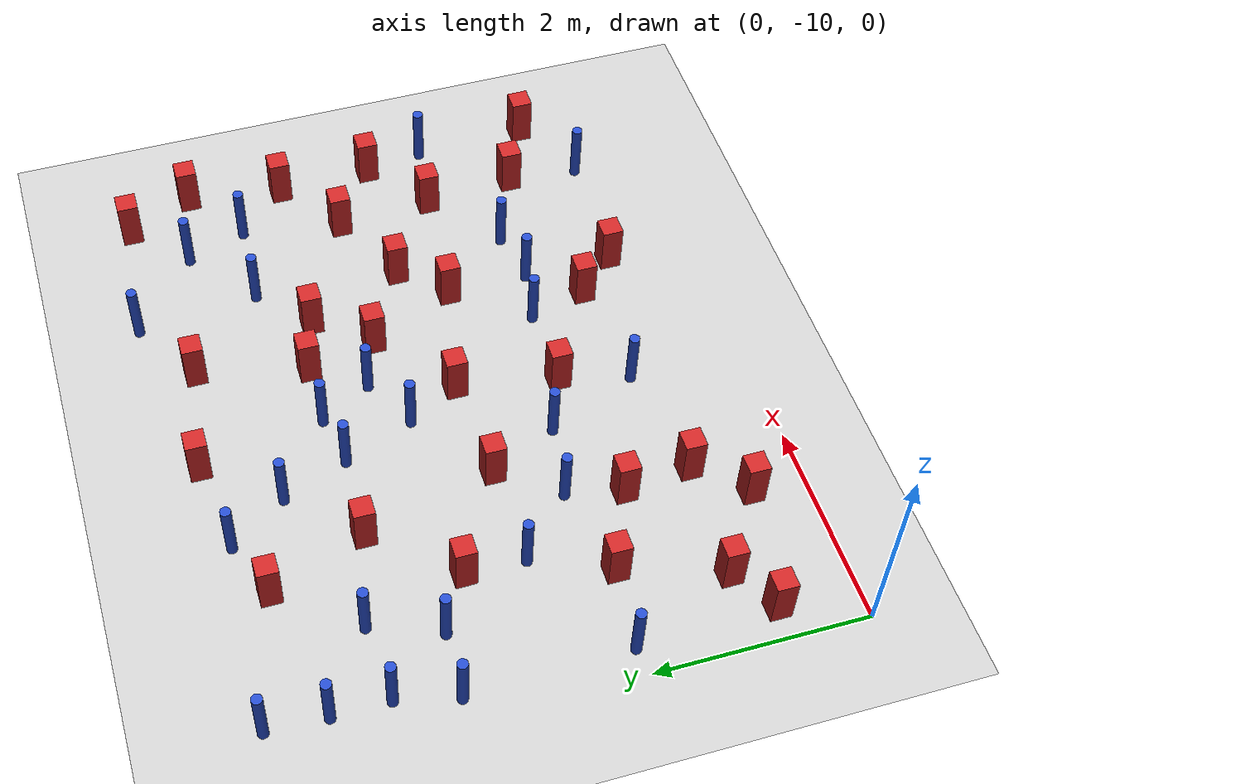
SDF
<sdf version="1.6">
 <world name="default">
  <model name="ground_plane">
   <static>1</static>
   <link name="link">
    <collision name="collision">
     <geometry><plane><normal>0 0 1</normal><size>100 100</size></plane></geometry>
     <surface><friction><ode><mu>100</mu><mu2>50</mu2></ode></friction></surface>
    </collision>
    <visual name="visual">
     <cast_shadows>0</cast_shadows>
     <geometry><plane><normal>0 0 1</normal><size>100 100</size></plane></geometry>
     <material>
      <ambient>1.0 1.0 1.0 1.0</ambient>
      <diffuse>0.8 0.8 0.8 1.0</diffuse>
      <specular>0.01 0.01 0.01 1.000000</specular>
     </material>
    </visual>
   </link>
  </model>
  <model name="pole_obstacle12">
   <static>true</static>
   <pose>3.98657509384 -8.20033591133 -2.66029137497e-07 -5.69430205676e-07 6.841299665e-07 -8.68349371119e-08</pose>
   <link name="link">
    <pose>0 0 0.3 0 -0 0</pose>
    <inertial>
     <mass>1</mass>
     <inertia><ixx>0.145833</ixx><ixy>0</ixy><ixz>0</ixz><iyy>0.145833</iyy><iyz>0</iyz><izz>0.125</izz></inertia>
    </inertial>
    <collision name="collision">
     <geometry><cylinder><radius>0.05</radius><length>.6</length></cylinder></geometry>
    </collision>
    <visual name="visual">
     <geometry><cylinder><radius>0.05</radius><length>.6</length></cylinder></geometry>
     <material>
      <script><name>Gazebo/Blue</name><uri>file://media/materials/scripts/gazebo.material</uri></script>
     </material>
    </visual>
   </link>
  </model>
  <model name="pole_obstacle14">
   <static>true</static>
   <pose>0.847910647393 -6.44056123123 -2.66029137441e-07 -5.69430205631e-07 6.84129966561e-07 -8.68349370784e-08</pose>
   <link name="link">
    <pose>0 0 0.3 0 -0 0</pose>
    <inertial>
     <mass>1</mass>
     <inertia><ixx>0.145833</ixx><ixy>0</ixy><ixz>0</ixz><iyy>0.145833</iyy><iyz>0</iyz><izz>0.125</izz></inertia>
    </inertial>
    <collision name="collision">
     <geometry><cylinder><radius>0.05</radius><length>.6</length></cylinder></geometry>
    </collision>
    <visual name="visual">
     <geometry><cylinder><radius>0.05</radius><length>.6</length></cylinder></geometry>
     <material>
      <script><name>Gazebo/Blue</name><uri>file://media/materials/scripts/gazebo.material</uri></script>
     </material>
    </visual>
   </link>
  </model>
  <model name="square_post_obstacle14">
   <static>true</static>
   <pose>1.79917641426 -8.37659242516 -7.80171244635e-07 7.17449752808e-06 -5.6639232126e-07 2.2715510512e-05</pose>
   <link name="link">
    <pose>0 0 0.25 0 -0 0</pose>
    <inertial>
     <mass>100</mass>
     <inertia>
      <ixx>0.166667</ixx>
      <ixy>0</ixy>
      <ixz>0</ixz>
      <iyy>0.166667</iyy>
      <iyz>0</iyz>
      <izz>0.166667</izz>
     </inertia>
    </inertial>
    <collision name="collision"><geometry><box><size>.2 .2 .5</size></box></geometry></collision>
    <visual name="visual">
     <geometry><box><size>.2 .2 .5</size></box></geometry>
     <material>
      <script><name>Gazebo/Red</name><uri>file://media/materials/scripts/gazebo.material</uri></script>
     </material>
    </visual>
   </link>
  </model>
  <model name="pole_obstacle28">
   <static>true</static>
   <pose>5.75426702351 -9.21714733048 -2.66029137441e-07 -5.69430205631e-07 6.84129966561e-07 -8.68349370782e-08</pose>
   <link name="link">
    <pose>0 0 0.3 0 -0 0</pose>
    <inertial>
     <mass>1</mass>
     <inertia><ixx>0.145833</ixx><ixy>0</ixy><ixz>0</ixz><iyy>0.145833</iyy><iyz>0</iyz><izz>0.125</izz></inertia>
    </inertial>
    <collision name="collision">
     <geometry><cylinder><radius>0.05</radius><length>.6</length></cylinder></geometry>
    </collision>
    <visual name="visual">
     <geometry><cylinder><radius>0.05</radius><length>.6</length></cylinder></geometry>
     <material>
      <script><name>Gazebo/Blue</name><uri>file://media/materials/scripts/gazebo.material</uri></script>
     </material>
    </visual>
   </link>
  </model>
  <model name="square_post_obstacle20">
   <static>true</static>
   <pose>2.32735849754 -7.29957355424 -7.80171244635e-07 7.17449752808e-06 -5.6639232126e-07 2.2715510512e-05</pose>
   <link name="link">
    <pose>0 0 0.25 0 -0 0</pose>
    <inertial>
     <mass>100</mass>
     <inertia>
      <ixx>0.166667</ixx>
      <ixy>0</ixy>
      <ixz>0</ixz>
      <iyy>0.166667</iyy>
      <iyz>0</iyz>
      <izz>0.166667</izz>
     </inertia>
    </inertial>
    <collision name="collision"><geometry><box><size>.2 .2 .5</size></box></geometry></collision>
    <visual name="visual">
     <geometry><box><size>.2 .2 .5</size></box></geometry>
     <material>
      <script><name>Gazebo/Red</name><uri>file://media/materials/scripts/gazebo.material</uri></script>
     </material>
    </visual>
   </link>
  </model>
  <model name="pole_obstacle30">
   <static>true</static>
   <pose>5.84307604666 -5.72837432333 -2.66029137441e-07 -5.69430205655e-07 6.84129966534e-07 -8.68349370984e-08</pose>
   <link name="link">
    <pose>0 0 0.3 0 -0 0</pose>
    <inertial>
     <mass>1</mass>
     <inertia><ixx>0.145833</ixx><ixy>0</ixy><ixz>0</ixz><iyy>0.145833</iyy><iyz>0</iyz><izz>0.125</izz></inertia>
    </inertial>
    <collision name="collision">
     <geometry><cylinder><radius>0.05</radius><length>.6</length></cylinder></geometry>
    </collision>
    <visual name="visual">
     <geometry><cylinder><radius>0.05</radius><length>.6</length></cylinder></geometry>
     <material>
      <script><name>Gazebo/Blue</name><uri>file://media/materials/scripts/gazebo.material</uri></script>
     </material>
    </visual>
   </link>
  </model>
  <model name="pole_obstacle32">
   <static>true</static>
   <pose>5.63944625185 -5.1454223209 -2.66029137441e-07 -5.69430205655e-07 6.84129966534e-07 -8.68349370984e-08</pose>
   <link name="link">
    <pose>0 0 0.3 0 -0 0</pose>
    <inertial>
     <mass>1</mass>
     <inertia><ixx>0.145833</ixx><ixy>0</ixy><ixz>0</ixz><iyy>0.145833</iyy><iyz>0</iyz><izz>0.125</izz></inertia>
    </inertial>
    <collision name="collision">
     <geometry><cylinder><radius>0.05</radius><length>.6</length></cylinder></geometry>
    </collision>
    <visual name="visual">
     <geometry><cylinder><radius>0.05</radius><length>.6</length></cylinder></geometry>
     <material>
      <script><name>Gazebo/Blue</name><uri>file://media/materials/scripts/gazebo.material</uri></script>
     </material>
    </visual>
   </link>
  </model>
  <model name="pole_obstacle45">
   <static>true</static>
   <pose>4.8703518311 -4.50431790699 -2.66029137441e-07 -5.69430205655e-07 6.84129966534e-07 -8.68349370984e-08</pose>
   <link name="link">
    <pose>0 0 0.3 0 -0 0</pose>
    <inertial>
     <mass>1</mass>
     <inertia><ixx>0.145833</ixx><ixy>0</ixy><ixz>0</ixz><iyy>0.145833</iyy><iyz>0</iyz><izz>0.125</izz></inertia>
    </inertial>
    <collision name="collision">
     <geometry><cylinder><radius>0.05</radius><length>.6</length></cylinder></geometry>
    </collision>
    <visual name="visual">
     <geometry><cylinder><radius>0.05</radius><length>.6</length></cylinder></geometry>
     <material>
      <script><name>Gazebo/Blue</name><uri>file://media/materials/scripts/gazebo.material</uri></script>
     </material>
    </visual>
   </link>
  </model>
  <model name="pole_obstacle49">
   <static>true</static>
   <pose>0.262993056703 -7.94798363408 -2.66029137441e-07 -5.6943020563e-07 6.84129966563e-07 -8.68349370772e-08</pose>
   <link name="link">
    <pose>0 0 0.3 0 -0 0</pose>
    <inertial>
     <mass>1</mass>
     <inertia><ixx>0.145833</ixx><ixy>0</ixy><ixz>0</ixz><iyy>0.145833</iyy><iyz>0</iyz><izz>0.125</izz></inertia>
    </inertial>
    <collision name="collision">
     <geometry><cylinder><radius>0.05</radius><length>.6</length></cylinder></geometry>
    </collision>
    <visual name="visual">
     <geometry><cylinder><radius>0.05</radius><length>.6</length></cylinder></geometry>
     <material>
      <script><name>Gazebo/Blue</name><uri>file://media/materials/scripts/gazebo.material</uri></script>
     </material>
    </visual>
   </link>
  </model>
  <model name="pole_obstacle51">
   <static>true</static>
   <pose>0.223933553716 -6.40572381202 -2.66029137441e-07 -5.69430205628e-07 6.84129966565e-07 -8.68349370765e-08</pose>
   <link name="link">
    <pose>0 0 0.3 0 -0 0</pose>
    <inertial>
     <mass>1</mass>
     <inertia><ixx>0.145833</ixx><ixy>0</ixy><ixz>0</ixz><iyy>0.145833</iyy><iyz>0</iyz><izz>0.125</izz></inertia>
    </inertial>
    <collision name="collision">
     <geometry><cylinder><radius>0.05</radius><length>.6</length></cylinder></geometry>
    </collision>
    <visual name="visual">
     <geometry><cylinder><radius>0.05</radius><length>.6</length></cylinder></geometry>
     <material>
      <script><name>Gazebo/Blue</name><uri>file://media/materials/scripts/gazebo.material</uri></script>
     </material>
    </visual>
   </link>
  </model>
  <model name="square_post_obstacle45">
   <static>true</static>
   <pose>6.32426885406 -7.13735271806 -7.80171244635e-07 7.17449752808e-06 -5.6639232126e-07 2.2715510512e-05</pose>
   <link name="link">
    <pose>0 0 0.25 0 -0 0</pose>
    <inertial>
     <mass>100</mass>
     <inertia>
      <ixx>0.166667</ixx>
      <ixy>0</ixy>
      <ixz>0</ixz>
      <iyy>0.166667</iyy>
      <iyz>0</iyz>
      <izz>0.166667</izz>
     </inertia>
    </inertial>
    <collision name="collision"><geometry><box><size>.2 .2 .5</size></box></geometry></collision>
    <visual name="visual">
     <geometry><box><size>.2 .2 .5</size></box></geometry>
     <material>
      <script><name>Gazebo/Red</name><uri>file://media/materials/scripts/gazebo.material</uri></script>
     </material>
    </visual>
   </link>
  </model>
  <model name="square_post_obstacle48">
   <static>true</static>
   <pose>4.18867110886 -4.92434346666 -7.80171244635e-07 7.17449752808e-06 -5.6639232126e-07 2.2715510512e-05</pose>
   <link name="link">
    <pose>0 0 0.25 0 -0 0</pose>
    <inertial>
     <mass>100</mass>
     <inertia>
      <ixx>0.166667</ixx>
      <ixy>0</ixy>
      <ixz>0</ixz>
      <iyy>0.166667</iyy>
      <iyz>0</iyz>
      <izz>0.166667</izz>
     </inertia>
    </inertial>
    <collision name="collision"><geometry><box><size>.2 .2 .5</size></box></geometry></collision>
    <visual name="visual">
     <geometry><box><size>.2 .2 .5</size></box></geometry>
     <material>
      <script><name>Gazebo/Red</name><uri>file://media/materials/scripts/gazebo.material</uri></script>
     </material>
    </visual>
   </link>
  </model>
  <model name="pole_obstacle69">
   <static>true</static>
   <pose>1.35397276438 -7.31853820333 -2.66029137441e-07 -5.69430205635e-07 6.84129966557e-07 -8.68349370822e-08</pose>
   <link name="link">
    <pose>0 0 0.3 0 -0 0</pose>
    <inertial>
     <mass>1</mass>
     <inertia><ixx>0.145833</ixx><ixy>0</ixy><ixz>0</ixz><iyy>0.145833</iyy><iyz>0</iyz><izz>0.125</izz></inertia>
    </inertial>
    <collision name="collision">
     <geometry><cylinder><radius>0.05</radius><length>.6</length></cylinder></geometry>
    </collision>
    <visual name="visual">
     <geometry><cylinder><radius>0.05</radius><length>.6</length></cylinder></geometry>
     <material>
      <script><name>Gazebo/Blue</name><uri>file://media/materials/scripts/gazebo.material</uri></script>
     </material>
    </visual>
   </link>
  </model>
  <model name="pole_obstacle73">
   <static>true</static>
   <pose>3.02610881195 -8.86918057215 -2.66029137497e-07 -5.69430205676e-07 6.84129966501e-07 -8.6834937112e-08</pose>
   <link name="link">
    <pose>0 0 0.3 0 -0 0</pose>
    <inertial>
     <mass>1</mass>
     <inertia><ixx>0.145833</ixx><ixy>0</ixy><ixz>0</ixz><iyy>0.145833</iyy><iyz>0</iyz><izz>0.125</izz></inertia>
    </inertial>
    <collision name="collision">
     <geometry><cylinder><radius>0.05</radius><length>.6</length></cylinder></geometry>
    </collision>
    <visual name="visual">
     <geometry><cylinder><radius>0.05</radius><length>.6</length></cylinder></geometry>
     <material>
      <script><name>Gazebo/Blue</name><uri>file://media/materials/scripts/gazebo.material</uri></script>
     </material>
    </visual>
   </link>
  </model>
  <model name="square_post_obstacle69">
   <static>true</static>
   <pose>3.18907561625 -8.19973712065 -7.80171244635e-07 7.17449752808e-06 -5.6639232126e-07 2.2715510512e-05</pose>
   <link name="link">
    <pose>0 0 0.25 0 -0 0</pose>
    <inertial>
     <mass>100</mass>
     <inertia>
      <ixx>0.166667</ixx>
      <ixy>0</ixy>
      <ixz>0</ixz>
      <iyy>0.166667</iyy>
      <iyz>0</iyz>
      <izz>0.166667</izz>
     </inertia>
    </inertial>
    <collision name="collision"><geometry><box><size>.2 .2 .5</size></box></geometry></collision>
    <visual name="visual">
     <geometry><box><size>.2 .2 .5</size></box></geometry>
     <material>
      <script><name>Gazebo/Red</name><uri>file://media/materials/scripts/gazebo.material</uri></script>
     </material>
    </visual>
   </link>
  </model>
  <model name="square_post_obstacle70">
   <static>true</static>
   <pose>1.36228574192 -6.74291524869 -7.80171244635e-07 7.17449752808e-06 -5.6639232126e-07 2.2715510512e-05</pose>
   <link name="link">
    <pose>0 0 0.25 0 -0 0</pose>
    <inertial>
     <mass>100</mass>
     <inertia>
      <ixx>0.166667</ixx>
      <ixy>0</ixy>
      <ixz>0</ixz>
      <iyy>0.166667</iyy>
      <iyz>0</iyz>
      <izz>0.166667</izz>
     </inertia>
    </inertial>
    <collision name="collision"><geometry><box><size>.2 .2 .5</size></box></geometry></collision>
    <visual name="visual">
     <geometry><box><size>.2 .2 .5</size></box></geometry>
     <material>
      <script><name>Gazebo/Red</name><uri>file://media/materials/scripts/gazebo.material</uri></script>
     </material>
    </visual>
   </link>
  </model>
  <model name="square_post_obstacle81">
   <static>true</static>
   <pose>4.1424475565 -8.75849866946 -7.80171244635e-07 7.17449752808e-06 -5.6639232126e-07 2.2715510512e-05</pose>
   <link name="link">
    <pose>0 0 0.25 0 -0 0</pose>
    <inertial>
     <mass>100</mass>
     <inertia>
      <ixx>0.166667</ixx>
      <ixy>0</ixy>
      <ixz>0</ixz>
      <iyy>0.166667</iyy>
      <iyz>0</iyz>
      <izz>0.166667</izz>
     </inertia>
    </inertial>
    <collision name="collision"><geometry><box><size>.2 .2 .5</size></box></geometry></collision>
    <visual name="visual">
     <geometry><box><size>.2 .2 .5</size></box></geometry>
     <material>
      <script><name>Gazebo/Red</name><uri>file://media/materials/scripts/gazebo.material</uri></script>
     </material>
    </visual>
   </link>
  </model>
  <model name="pole_obstacle90">
   <static>true</static>
   <pose>1.92553760993 -7.85225269934 -2.66029137441e-07 -5.69430205635e-07 6.84129966557e-07 -8.68349370822e-08</pose>
   <link name="link">
    <pose>0 0 0.3 0 -0 0</pose>
    <inertial>
     <mass>1</mass>
     <inertia><ixx>0.145833</ixx><ixy>0</ixy><ixz>0</ixz><iyy>0.145833</iyy><iyz>0</iyz><izz>0.125</izz></inertia>
    </inertial>
    <collision name="collision">
     <geometry><cylinder><radius>0.05</radius><length>.6</length></cylinder></geometry>
    </collision>
    <visual name="visual">
     <geometry><cylinder><radius>0.05</radius><length>.6</length></cylinder></geometry>
     <material>
      <script><name>Gazebo/Blue</name><uri>file://media/materials/scripts/gazebo.material</uri></script>
     </material>
    </visual>
   </link>
  </model>
  <model name="pole_obstacle92">
   <static>true</static>
   <pose>2.57754472091 -5.41410036615 -2.66029137441e-07 -5.69430205635e-07 6.84129966557e-07 -8.68349370832e-08</pose>
   <link name="link">
    <pose>0 0 0.3 0 -0 0</pose>
    <inertial>
     <mass>1</mass>
     <inertia><ixx>0.145833</ixx><ixy>0</ixy><ixz>0</ixz><iyy>0.145833</iyy><iyz>0</iyz><izz>0.125</izz></inertia>
    </inertial>
    <collision name="collision">
     <geometry><cylinder><radius>0.05</radius><length>.6</length></cylinder></geometry>
    </collision>
    <visual name="visual">
     <geometry><cylinder><radius>0.05</radius><length>.6</length></cylinder></geometry>
     <material>
      <script><name>Gazebo/Blue</name><uri>file://media/materials/scripts/gazebo.material</uri></script>
     </material>
    </visual>
   </link>
  </model>
  <model name="pole_obstacle95">
   <static>true</static>
   <pose>3.61321335837 -6.45853946013 -2.66029137441e-07 -5.69430205635e-07 6.84129966557e-07 -8.68349370832e-08</pose>
   <link name="link">
    <pose>0 0 0.3 0 -0 0</pose>
    <inertial>
     <mass>1</mass>
     <inertia><ixx>0.145833</ixx><ixy>0</ixy><ixz>0</ixz><iyy>0.145833</iyy><iyz>0</iyz><izz>0.125</izz></inertia>
    </inertial>
    <collision name="collision">
     <geometry><cylinder><radius>0.05</radius><length>.6</length></cylinder></geometry>
    </collision>
    <visual name="visual">
     <geometry><cylinder><radius>0.05</radius><length>.6</length></cylinder></geometry>
     <material>
      <script><name>Gazebo/Blue</name><uri>file://media/materials/scripts/gazebo.material</uri></script>
     </material>
    </visual>
   </link>
  </model>
  <model name="square_post_obstacle90">
   <static>true</static>
   <pose>1.64500222445 -5.08081183893 -7.80171244635e-07 7.17449752808e-06 -5.6639232126e-07 2.2715510512e-05</pose>
   <link name="link">
    <pose>0 0 0.25 0 -0 0</pose>
    <inertial>
     <mass>100</mass>
     <inertia>
      <ixx>0.166667</ixx>
      <ixy>0</ixy>
      <ixz>0</ixz>
      <iyy>0.166667</iyy>
      <iyz>0</iyz>
      <izz>0.166667</izz>
     </inertia>
    </inertial>
    <collision name="collision"><geometry><box><size>.2 .2 .5</size></box></geometry></collision>
    <visual name="visual">
     <geometry><box><size>.2 .2 .5</size></box></geometry>
     <material>
      <script><name>Gazebo/Red</name><uri>file://media/materials/scripts/gazebo.material</uri></script>
     </material>
    </visual>
   </link>
  </model>
  <model name="pole_obstacle105">
   <static>true</static>
   <pose>4.50883559661 -8.29172598618 -2.66029137441e-07 -5.69430205631e-07 6.84129966561e-07 -8.68349370782e-08</pose>
   <link name="link">
    <pose>0 0 0.3 0 -0 0</pose>
    <inertial>
     <mass>1</mass>
     <inertia><ixx>0.145833</ixx><ixy>0</ixy><ixz>0</ixz><iyy>0.145833</iyy><iyz>0</iyz><izz>0.125</izz></inertia>
    </inertial>
    <collision name="collision">
     <geometry><cylinder><radius>0.05</radius><length>.6</length></cylinder></geometry>
    </collision>
    <visual name="visual">
     <geometry><cylinder><radius>0.05</radius><length>.6</length></cylinder></geometry>
     <material>
      <script><name>Gazebo/Blue</name><uri>file://media/materials/scripts/gazebo.material</uri></script>
     </material>
    </visual>
   </link>
  </model>
  <model name="square_post_obstacle102">
   <static>true</static>
   <pose>0.294115859675 -9.24238950633 -7.80171244635e-07 7.17449752808e-06 -5.6639232126e-07 2.2715510512e-05</pose>
   <link name="link">
    <pose>0 0 0.25 0 -0 0</pose>
    <inertial>
     <mass>100</mass>
     <inertia>
      <ixx>0.166667</ixx>
      <ixy>0</ixy>
      <ixz>0</ixz>
      <iyy>0.166667</iyy>
      <iyz>0</iyz>
      <izz>0.166667</izz>
     </inertia>
    </inertial>
    <collision name="collision"><geometry><box><size>.2 .2 .5</size></box></geometry></collision>
    <visual name="visual">
     <geometry><box><size>.2 .2 .5</size></box></geometry>
     <material>
      <script><name>Gazebo/Red</name><uri>file://media/materials/scripts/gazebo.material</uri></script>
     </material>
    </visual>
   </link>
  </model>
  <model name="square_post_obstacle109">
   <static>true</static>
   <pose>4.88803948129 -7.07130465307 -7.80171244635e-07 7.17449752808e-06 -5.6639232126e-07 2.2715510512e-05</pose>
   <link name="link">
    <pose>0 0 0.25 0 -0 0</pose>
    <inertial>
     <mass>100</mass>
     <inertia>
      <ixx>0.166667</ixx>
      <ixy>0</ixy>
      <ixz>0</ixz>
      <iyy>0.166667</iyy>
      <iyz>0</iyz>
      <izz>0.166667</izz>
     </inertia>
    </inertial>
    <collision name="collision"><geometry><box><size>.2 .2 .5</size></box></geometry></collision>
    <visual name="visual">
     <geometry><box><size>.2 .2 .5</size></box></geometry>
     <material>
      <script><name>Gazebo/Red</name><uri>file://media/materials/scripts/gazebo.material</uri></script>
     </material>
    </visual>
   </link>
  </model>
  <model name="square_post_obstacle113">
   <static>true</static>
   <pose>3.36084242237 -7.23724641591 -7.80171244635e-07 7.17449752808e-06 -5.6639232126e-07 2.2715510512e-05</pose>
   <link name="link">
    <pose>0 0 0.25 0 -0 0</pose>
    <inertial>
     <mass>100</mass>
     <inertia>
      <ixx>0.166667</ixx>
      <ixy>0</ixy>
      <ixz>0</ixz>
      <iyy>0.166667</iyy>
      <iyz>0</iyz>
      <izz>0.166667</izz>
     </inertia>
    </inertial>
    <collision name="collision"><geometry><box><size>.2 .2 .5</size></box></geometry></collision>
    <visual name="visual">
     <geometry><box><size>.2 .2 .5</size></box></geometry>
     <material>
      <script><name>Gazebo/Red</name><uri>file://media/materials/scripts/gazebo.material</uri></script>
     </material>
    </visual>
   </link>
  </model>
  <model name="pole_obstacle119">
   <static>true</static>
   <pose>2.8242451339 -6.05090147368 -2.66029137441e-07 -5.69430205635e-07 6.84129966557e-07 -8.68349370832e-08</pose>
   <link name="link">
    <pose>0 0 0.3 0 -0 0</pose>
    <inertial>
     <mass>1</mass>
     <inertia><ixx>0.145833</ixx><ixy>0</ixy><ixz>0</ixz><iyy>0.145833</iyy><iyz>0</iyz><izz>0.125</izz></inertia>
    </inertial>
    <collision name="collision">
     <geometry><cylinder><radius>0.05</radius><length>.6</length></cylinder></geometry>
    </collision>
    <visual name="visual">
     <geometry><cylinder><radius>0.05</radius><length>.6</length></cylinder></geometry>
     <material>
      <script><name>Gazebo/Blue</name><uri>file://media/materials/scripts/gazebo.material</uri></script>
     </material>
    </visual>
   </link>
  </model>
  <model name="pole_obstacle121">
   <static>true</static>
   <pose>2.20260758967 -4.86233333477 -2.66029137441e-07 -5.69430205635e-07 6.84129966557e-07 -8.68349370832e-08</pose>
   <link name="link">
    <pose>0 0 0.3 0 -0 0</pose>
    <inertial>
     <mass>1</mass>
     <inertia><ixx>0.145833</ixx><ixy>0</ixy><ixz>0</ixz><iyy>0.145833</iyy><iyz>0</iyz><izz>0.125</izz></inertia>
    </inertial>
    <collision name="collision">
     <geometry><cylinder><radius>0.05</radius><length>.6</length></cylinder></geometry>
    </collision>
    <visual name="visual">
     <geometry><cylinder><radius>0.05</radius><length>.6</length></cylinder></geometry>
     <material>
      <script><name>Gazebo/Blue</name><uri>file://media/materials/scripts/gazebo.material</uri></script>
     </material>
    </visual>
   </link>
  </model>
  <model name="pole_obstacle123">
   <static>true</static>
   <pose>4.99275388361 -5.67926004825 -2.66029137441e-07 -5.69430205655e-07 6.84129966534e-07 -8.68349370984e-08</pose>
   <link name="link">
    <pose>0 0 0.3 0 -0 0</pose>
    <inertial>
     <mass>1</mass>
     <inertia><ixx>0.145833</ixx><ixy>0</ixy><ixz>0</ixz><iyy>0.145833</iyy><iyz>0</iyz><izz>0.125</izz></inertia>
    </inertial>
    <collision name="collision">
     <geometry><cylinder><radius>0.05</radius><length>.6</length></cylinder></geometry>
    </collision>
    <visual name="visual">
     <geometry><cylinder><radius>0.05</radius><length>.6</length></cylinder></geometry>
     <material>
      <script><name>Gazebo/Blue</name><uri>file://media/materials/scripts/gazebo.material</uri></script>
     </material>
    </visual>
   </link>
  </model>
  <model name="square_post_obstacle122">
   <static>true</static>
   <pose>1.9927771368 -6.00977873225 -7.80171244635e-07 7.17449752808e-06 -5.6639232126e-07 2.2715510512e-05</pose>
   <link name="link">
    <pose>0 0 0.25 0 -0 0</pose>
    <inertial>
     <mass>100</mass>
     <inertia>
      <ixx>0.166667</ixx>
      <ixy>0</ixy>
      <ixz>0</ixz>
      <iyy>0.166667</iyy>
      <iyz>0</iyz>
      <izz>0.166667</izz>
     </inertia>
    </inertial>
    <collision name="collision"><geometry><box><size>.2 .2 .5</size></box></geometry></collision>
    <visual name="visual">
     <geometry><box><size>.2 .2 .5</size></box></geometry>
     <material>
      <script><name>Gazebo/Red</name><uri>file://media/materials/scripts/gazebo.material</uri></script>
     </material>
    </visual>
   </link>
  </model>
  <model name="square_post_obstacle124">
   <static>true</static>
   <pose>3.93990074576 -5.96792204395 -7.80171244635e-07 7.17449752808e-06 -5.6639232126e-07 2.2715510512e-05</pose>
   <link name="link">
    <pose>0 0 0.25 0 -0 0</pose>
    <inertial>
     <mass>100</mass>
     <inertia>
      <ixx>0.166667</ixx>
      <ixy>0</ixy>
      <ixz>0</ixz>
      <iyy>0.166667</iyy>
      <iyz>0</iyz>
      <izz>0.166667</izz>
     </inertia>
    </inertial>
    <collision name="collision"><geometry><box><size>.2 .2 .5</size></box></geometry></collision>
    <visual name="visual">
     <geometry><box><size>.2 .2 .5</size></box></geometry>
     <material>
      <script><name>Gazebo/Red</name><uri>file://media/materials/scripts/gazebo.material</uri></script>
     </material>
    </visual>
   </link>
  </model>
  <model name="square_post_obstacle126">
   <static>true</static>
   <pose>5.79499935256 -8.50862688613 -7.80171244635e-07 7.17449752808e-06 -5.6639232126e-07 2.2715510512e-05</pose>
   <link name="link">
    <pose>0 0 0.25 0 -0 0</pose>
    <inertial>
     <mass>100</mass>
     <inertia>
      <ixx>0.166667</ixx>
      <ixy>0</ixy>
      <ixz>0</ixz>
      <iyy>0.166667</iyy>
      <iyz>0</iyz>
      <izz>0.166667</izz>
     </inertia>
    </inertial>
    <collision name="collision"><geometry><box><size>.2 .2 .5</size></box></geometry></collision>
    <visual name="visual">
     <geometry><box><size>.2 .2 .5</size></box></geometry>
     <material>
      <script><name>Gazebo/Red</name><uri>file://media/materials/scripts/gazebo.material</uri></script>
     </material>
    </visual>
   </link>
  </model>
  <model name="pole_obstacle138">
   <static>true</static>
   <pose>5.04310734733 -8.19708765643 -2.66029137441e-07 -5.69430205631e-07 6.84129966561e-07 -8.68349370782e-08</pose>
   <link name="link">
    <pose>0 0 0.3 0 -0 0</pose>
    <inertial>
     <mass>1</mass>
     <inertia><ixx>0.145833</ixx><ixy>0</ixy><ixz>0</ixz><iyy>0.145833</iyy><iyz>0</iyz><izz>0.125</izz></inertia>
    </inertial>
    <collision name="collision">
     <geometry><cylinder><radius>0.05</radius><length>.6</length></cylinder></geometry>
    </collision>
    <visual name="visual">
     <geometry><cylinder><radius>0.05</radius><length>.6</length></cylinder></geometry>
     <material>
      <script><name>Gazebo/Blue</name><uri>file://media/materials/scripts/gazebo.material</uri></script>
     </material>
    </visual>
   </link>
  </model>
  <model name="square_post_obstacle139">
   <static>true</static>
   <pose>1.03446437434 -8.02755647319 -7.80171244635e-07 7.17449752808e-06 -5.6639232126e-07 2.2715510512e-05</pose>
   <link name="link">
    <pose>0 0 0.25 0 -0 0</pose>
    <inertial>
     <mass>100</mass>
     <inertia>
      <ixx>0.166667</ixx>
      <ixy>0</ixy>
      <ixz>0</ixz>
      <iyy>0.166667</iyy>
      <iyz>0</iyz>
      <izz>0.166667</izz>
     </inertia>
    </inertial>
    <collision name="collision"><geometry><box><size>.2 .2 .5</size></box></geometry></collision>
    <visual name="visual">
     <geometry><box><size>.2 .2 .5</size></box></geometry>
     <material>
      <script><name>Gazebo/Red</name><uri>file://media/materials/scripts/gazebo.material</uri></script>
     </material>
    </visual>
   </link>
  </model>
  <model name="square_post_obstacle142">
   <static>true</static>
   <pose>4.49365881419 -7.49289644545 -7.80171244635e-07 7.17449752808e-06 -5.6639232126e-07 2.2715510512e-05</pose>
   <link name="link">
    <pose>0 0 0.25 0 -0 0</pose>
    <inertial>
     <mass>100</mass>
     <inertia>
      <ixx>0.166667</ixx>
      <ixy>0</ixy>
      <ixz>0</ixz>
      <iyy>0.166667</iyy>
      <iyz>0</iyz>
      <izz>0.166667</izz>
     </inertia>
    </inertial>
    <collision name="collision"><geometry><box><size>.2 .2 .5</size></box></geometry></collision>
    <visual name="visual">
     <geometry><box><size>.2 .2 .5</size></box></geometry>
     <material>
      <script><name>Gazebo/Red</name><uri>file://media/materials/scripts/gazebo.material</uri></script>
     </material>
    </visual>
   </link>
  </model>
  <model name="square_post_obstacle144">
   <static>true</static>
   <pose>6.45993640471 -8.82613777663 -7.80171244635e-07 7.17449752808e-06 -5.6639232126e-07 2.2715510512e-05</pose>
   <link name="link">
    <pose>0 0 0.25 0 -0 0</pose>
    <inertial>
     <mass>100</mass>
     <inertia>
      <ixx>0.166667</ixx>
      <ixy>0</ixy>
      <ixz>0</ixz>
      <iyy>0.166667</iyy>
      <iyz>0</iyz>
      <izz>0.166667</izz>
     </inertia>
    </inertial>
    <collision name="collision"><geometry><box><size>.2 .2 .5</size></box></geometry></collision>
    <visual name="visual">
     <geometry><box><size>.2 .2 .5</size></box></geometry>
     <material>
      <script><name>Gazebo/Red</name><uri>file://media/materials/scripts/gazebo.material</uri></script>
     </material>
    </visual>
   </link>
  </model>
  <model name="square_post_obstacle146">
   <static>true</static>
   <pose>4.49566313854 -6.12346671554 -7.80171244635e-07 7.17449752808e-06 -5.6639232126e-07 2.2715510512e-05</pose>
   <link name="link">
    <pose>0 0 0.25 0 -0 0</pose>
    <inertial>
     <mass>100</mass>
     <inertia>
      <ixx>0.166667</ixx>
      <ixy>0</ixy>
      <ixz>0</ixz>
      <iyy>0.166667</iyy>
      <iyz>0</iyz>
      <izz>0.166667</izz>
     </inertia>
    </inertial>
    <collision name="collision"><geometry><box><size>.2 .2 .5</size></box></geometry></collision>
    <visual name="visual">
     <geometry><box><size>.2 .2 .5</size></box></geometry>
     <material>
      <script><name>Gazebo/Red</name><uri>file://media/materials/scripts/gazebo.material</uri></script>
     </material>
    </visual>
   </link>
  </model>
  <model name="square_post_obstacle150">
   <static>true</static>
   <pose>0.718383365787 -8.96546649675 -7.80171244635e-07 7.17449752808e-06 -5.6639232126e-07 2.2715510512e-05</pose>
   <link name="link">
    <pose>0 0 0.25 0 -0 0</pose>
    <inertial>
     <mass>100</mass>
     <inertia>
      <ixx>0.166667</ixx>
      <ixy>0</ixy>
      <ixz>0</ixz>
      <iyy>0.166667</iyy>
      <iyz>0</iyz>
      <izz>0.166667</izz>
     </inertia>
    </inertial>
    <collision name="collision"><geometry><box><size>.2 .2 .5</size></box></geometry></collision>
    <visual name="visual">
     <geometry><box><size>.2 .2 .5</size></box></geometry>
     <material>
      <script><name>Gazebo/Red</name><uri>file://media/materials/scripts/gazebo.material</uri></script>
     </material>
    </visual>
   </link>
  </model>
  <model name="square_post_obstacle155">
   <static>true</static>
   <pose>3.10495624992 -4.75123559477 -7.80171244635e-07 7.17449752808e-06 -5.6639232126e-07 2.2715510512e-05</pose>
   <link name="link">
    <pose>0 0 0.25 0 -0 0</pose>
    <inertial>
     <mass>100</mass>
     <inertia>
      <ixx>0.166667</ixx>
      <ixy>0</ixy>
      <ixz>0</ixz>
      <iyy>0.166667</iyy>
      <iyz>0</iyz>
      <izz>0.166667</izz>
     </inertia>
    </inertial>
    <collision name="collision"><geometry><box><size>.2 .2 .5</size></box></geometry></collision>
    <visual name="visual">
     <geometry><box><size>.2 .2 .5</size></box></geometry>
     <material>
      <script><name>Gazebo/Red</name><uri>file://media/materials/scripts/gazebo.material</uri></script>
     </material>
    </visual>
   </link>
  </model>
  <model name="pole_obstacle173">
   <static>true</static>
   <pose>0.361474335657 -5.840215693 -2.66029137441e-07 -5.69430205632e-07 6.84129966561e-07 -8.68349370786e-08</pose>
   <link name="link">
    <pose>0 0 0.3 0 -0 0</pose>
    <inertial>
     <mass>1</mass>
     <inertia><ixx>0.145833</ixx><ixy>0</ixy><ixz>0</ixz><iyy>0.145833</iyy><iyz>0</iyz><izz>0.125</izz></inertia>
    </inertial>
    <collision name="collision">
     <geometry><cylinder><radius>0.05</radius><length>.6</length></cylinder></geometry>
    </collision>
    <visual name="visual">
     <geometry><cylinder><radius>0.05</radius><length>.6</length></cylinder></geometry>
     <material>
      <script><name>Gazebo/Blue</name><uri>file://media/materials/scripts/gazebo.material</uri></script>
     </material>
    </visual>
   </link>
  </model>
  <model name="pole_obstacle174">
   <static>true</static>
   <pose>3.33368397921 -5.95713654086 -2.66029137441e-07 -5.69430205635e-07 6.84129966557e-07 -8.68349370832e-08</pose>
   <link name="link">
    <pose>0 0 0.3 0 -0 0</pose>
    <inertial>
     <mass>1</mass>
     <inertia><ixx>0.145833</ixx><ixy>0</ixy><ixz>0</ixz><iyy>0.145833</iyy><iyz>0</iyz><izz>0.125</izz></inertia>
    </inertial>
    <collision name="collision">
     <geometry><cylinder><radius>0.05</radius><length>.6</length></cylinder></geometry>
    </collision>
    <visual name="visual">
     <geometry><cylinder><radius>0.05</radius><length>.6</length></cylinder></geometry>
     <material>
      <script><name>Gazebo/Blue</name><uri>file://media/materials/scripts/gazebo.material</uri></script>
     </material>
    </visual>
   </link>
  </model>
  <model name="square_post_obstacle176">
   <static>true</static>
   <pose>1.874450298 -9.02203450027 -7.80171244635e-07 7.17449752808e-06 -5.6639232126e-07 2.2715510512e-05</pose>
   <link name="link">
    <pose>0 0 0.25 0 -0 0</pose>
    <inertial>
     <mass>100</mass>
     <inertia>
      <ixx>0.166667</ixx>
      <ixy>0</ixy>
      <ixz>0</ixz>
      <iyy>0.166667</iyy>
      <iyz>0</iyz>
      <izz>0.166667</izz>
     </inertia>
    </inertial>
    <collision name="collision"><geometry><box><size>.2 .2 .5</size></box></geometry></collision>
    <visual name="visual">
     <geometry><box><size>.2 .2 .5</size></box></geometry>
     <material>
      <script><name>Gazebo/Red</name><uri>file://media/materials/scripts/gazebo.material</uri></script>
     </material>
    </visual>
   </link>
  </model>
  <model name="pole_obstacle185">
   <static>true</static>
   <pose>0.377492774321 -4.74431628771 -2.66029137441e-07 -5.69430205632e-07 6.84129966561e-07 -8.68349370786e-08</pose>
   <link name="link">
    <pose>0 0 0.3 0 -0 0</pose>
    <inertial>
     <mass>1</mass>
     <inertia><ixx>0.145833</ixx><ixy>0</ixy><ixz>0</ixz><iyy>0.145833</iyy><iyz>0</iyz><izz>0.125</izz></inertia>
    </inertial>
    <collision name="collision">
     <geometry><cylinder><radius>0.05</radius><length>.6</length></cylinder></geometry>
    </collision>
    <visual name="visual">
     <geometry><cylinder><radius>0.05</radius><length>.6</length></cylinder></geometry>
     <material>
      <script><name>Gazebo/Blue</name><uri>file://media/materials/scripts/gazebo.material</uri></script>
     </material>
    </visual>
   </link>
  </model>
  <model name="square_post_obstacle188">
   <static>true</static>
   <pose>5.72378481 -7.61945809196 -7.80171244635e-07 7.17449752808e-06 -5.6639232126e-07 2.2715510512e-05</pose>
   <link name="link">
    <pose>0 0 0.25 0 -0 0</pose>
    <inertial>
     <mass>100</mass>
     <inertia>
      <ixx>0.166667</ixx>
      <ixy>0</ixy>
      <ixz>0</ixz>
      <iyy>0.166667</iyy>
      <iyz>0</iyz>
      <izz>0.166667</izz>
     </inertia>
    </inertial>
    <collision name="collision"><geometry><box><size>.2 .2 .5</size></box></geometry></collision>
    <visual name="visual">
     <geometry><box><size>.2 .2 .5</size></box></geometry>
     <material>
      <script><name>Gazebo/Red</name><uri>file://media/materials/scripts/gazebo.material</uri></script>
     </material>
    </visual>
   </link>
  </model>
  <model name="square_post_obstacle193">
   <static>true</static>
   <pose>6.29330778404 -6.21649149393 -7.80171244635e-07 7.17449752808e-06 -5.6639232126e-07 2.2715510512e-05</pose>
   <link name="link">
    <pose>0 0 0.25 0 -0 0</pose>
    <inertial>
     <mass>100</mass>
     <inertia>
      <ixx>0.166667</ixx>
      <ixy>0</ixy>
      <ixz>0</ixz>
      <iyy>0.166667</iyy>
      <iyz>0</iyz>
      <izz>0.166667</izz>
     </inertia>
    </inertial>
    <collision name="collision"><geometry><box><size>.2 .2 .5</size></box></geometry></collision>
    <visual name="visual">
     <geometry><box><size>.2 .2 .5</size></box></geometry>
     <material>
      <script><name>Gazebo/Red</name><uri>file://media/materials/scripts/gazebo.material</uri></script>
     </material>
    </visual>
   </link>
  </model>
  <model name="square_post_obstacle196">
   <static>true</static>
   <pose>5.66168995618 -6.69293234873 -7.80171244635e-07 7.17449752808e-06 -5.6639232126e-07 2.2715510512e-05</pose>
   <link name="link">
    <pose>0 0 0.25 0 -0 0</pose>
    <inertial>
     <mass>100</mass>
     <inertia>
      <ixx>0.166667</ixx>
      <ixy>0</ixy>
      <ixz>0</ixz>
      <iyy>0.166667</iyy>
      <iyz>0</iyz>
      <izz>0.166667</izz>
     </inertia>
    </inertial>
    <collision name="collision"><geometry><box><size>.2 .2 .5</size></box></geometry></collision>
    <visual name="visual">
     <geometry><box><size>.2 .2 .5</size></box></geometry>
     <material>
      <script><name>Gazebo/Red</name><uri>file://media/materials/scripts/gazebo.material</uri></script>
     </material>
    </visual>
   </link>
  </model>
  <model name="pole_obstacle188">
   <static>true</static>
   <pose>1.0961792153 -5.7940734666 -2.66029137441e-07 -5.69430205635e-07 6.84129966557e-07 -8.68349370822e-08</pose>
   <link name="link">
    <pose>0 0 0.3 0 -0 0</pose>
    <inertial>
     <mass>1</mass>
     <inertia><ixx>0.145833</ixx><ixy>0</ixy><ixz>0</ixz><iyy>0.145833</iyy><iyz>0</iyz><izz>0.125</izz></inertia>
    </inertial>
    <collision name="collision">
     <geometry><cylinder><radius>0.05</radius><length>.6</length></cylinder></geometry>
    </collision>
    <visual name="visual">
     <geometry><cylinder><radius>0.05</radius><length>.6</length></cylinder></geometry>
     <material>
      <script><name>Gazebo/Blue</name><uri>file://media/materials/scripts/gazebo.material</uri></script>
     </material>
    </visual>
   </link>
  </model>
  <model name="square_post_obstacle198">
   <static>true</static>
   <pose>4.10071622138 -6.63894670617 -7.80171244635e-07 7.17449752808e-06 -5.6639232126e-07 2.2715510512e-05</pose>
   <link name="link">
    <pose>0 0 0.25 0 -0 0</pose>
    <inertial>
     <mass>100</mass>
     <inertia>
      <ixx>0.166667</ixx>
      <ixy>0</ixy>
      <ixz>0</ixz>
      <iyy>0.166667</iyy>
      <iyz>0</iyz>
      <izz>0.166667</izz>
     </inertia>
    </inertial>
    <collision name="collision"><geometry><box><size>.2 .2 .5</size></box></geometry></collision>
    <visual name="visual">
     <geometry><box><size>.2 .2 .5</size></box></geometry>
     <material>
      <script><name>Gazebo/Red</name><uri>file://media/materials/scripts/gazebo.material</uri></script>
     </material>
    </visual>
   </link>
  </model>
  <model name="square_post_obstacle199">
   <static>true</static>
   <pose>6.13978659761 -4.65388900307 -7.80171244635e-07 7.17449752808e-06 -5.6639232126e-07 2.2715510512e-05</pose>
   <link name="link">
    <pose>0 0 0.25 0 -0 0</pose>
    <inertial>
     <mass>100</mass>
     <inertia>
      <ixx>0.166667</ixx>
      <ixy>0</ixy>
      <ixz>0</ixz>
      <iyy>0.166667</iyy>
      <iyz>0</iyz>
      <izz>0.166667</izz>
     </inertia>
    </inertial>
    <collision name="collision"><geometry><box><size>.2 .2 .5</size></box></geometry></collision>
    <visual name="visual">
     <geometry><box><size>.2 .2 .5</size></box></geometry>
     <material>
      <script><name>Gazebo/Red</name><uri>file://media/materials/scripts/gazebo.material</uri></script>
     </material>
    </visual>
   </link>
  </model>
  <model name="square_post_obstacle200">
   <static>true</static>
   <pose>4.50343492152 -9.14614840995 -7.80171244635e-07 7.17449752808e-06 -5.6639232126e-07 2.2715510512e-05</pose>
   <link name="link">
    <pose>0 0 0.25 0 -0 0</pose>
    <inertial>
     <mass>100</mass>
     <inertia>
      <ixx>0.166667</ixx>
      <ixy>0</ixy>
      <ixz>0</ixz>
      <iyy>0.166667</iyy>
      <iyz>0</iyz>
      <izz>0.166667</izz>
     </inertia>
    </inertial>
    <collision name="collision"><geometry><box><size>.2 .2 .5</size></box></geometry></collision>
    <visual name="visual">
     <geometry><box><size>.2 .2 .5</size></box></geometry>
     <material>
      <script><name>Gazebo/Red</name><uri>file://media/materials/scripts/gazebo.material</uri></script>
     </material>
    </visual>
   </link>
  </model>
  <model name="square_post_obstacle201">
   <static>true</static>
   <pose>1.47547253762 -9.46968477127 -7.80171244635e-07 7.17449752808e-06 -5.6639232126e-07 2.2715510512e-05</pose>
   <link name="link">
    <pose>0 0 0.25 0 -0 0</pose>
    <inertial>
     <mass>100</mass>
     <inertia>
      <ixx>0.166667</ixx>
      <ixy>0</ixy>
      <ixz>0</ixz>
      <iyy>0.166667</iyy>
      <iyz>0</iyz>
      <izz>0.166667</izz>
     </inertia>
    </inertial>
    <collision name="collision"><geometry><box><size>.2 .2 .5</size></box></geometry></collision>
    <visual name="visual">
     <geometry><box><size>.2 .2 .5</size></box></geometry>
     <material>
      <script><name>Gazebo/Red</name><uri>file://media/materials/scripts/gazebo.material</uri></script>
     </material>
    </visual>
   </link>
  </model>
  <model name="pole_obstacle192">
   <static>true</static>
   <pose>0.355342037327 -5.30465204346 -2.66029137441e-07 -5.69430205632e-07 6.84129966561e-07 -8.68349370786e-08</pose>
   <link name="link">
    <pose>0 0 0.3 0 -0 0</pose>
    <inertial>
     <mass>1</mass>
     <inertia><ixx>0.145833</ixx><ixy>0</ixy><ixz>0</ixz><iyy>0.145833</iyy><iyz>0</iyz><izz>0.125</izz></inertia>
    </inertial>
    <collision name="collision">
     <geometry><cylinder><radius>0.05</radius><length>.6</length></cylinder></geometry>
    </collision>
    <visual name="visual">
     <geometry><cylinder><radius>0.05</radius><length>.6</length></cylinder></geometry>
     <material>
      <script><name>Gazebo/Blue</name><uri>file://media/materials/scripts/gazebo.material</uri></script>
     </material>
    </visual>
   </link>
  </model>
  <model name="square_post_obstacle206">
   <static>true</static>
   <pose>6.43343611613 -5.29351971244 -7.80171244635e-07 7.17449752808e-06 -5.6639232126e-07 2.2715510512e-05</pose>
   <link name="link">
    <pose>0 0 0.25 0 -0 0</pose>
    <inertial>
     <mass>100</mass>
     <inertia>
      <ixx>0.166667</ixx>
      <ixy>0</ixy>
      <ixz>0</ixz>
      <iyy>0.166667</iyy>
      <iyz>0</iyz>
      <izz>0.166667</izz>
     </inertia>
    </inertial>
    <collision name="collision"><geometry><box><size>.2 .2 .5</size></box></geometry></collision>
    <visual name="visual">
     <geometry><box><size>.2 .2 .5</size></box></geometry>
     <material>
      <script><name>Gazebo/Red</name><uri>file://media/materials/scripts/gazebo.material</uri></script>
     </material>
    </visual>
   </link>
  </model>
  <model name="pole_obstacle204">
   <static>true</static>
   <pose>3.09646509339 -6.73821662478 -2.66029137441e-07 -5.69430205635e-07 6.84129966557e-07 -8.68349370832e-08</pose>
   <link name="link">
    <pose>0 0 0.3 0 -0 0</pose>
    <inertial>
     <mass>1</mass>
     <inertia><ixx>0.145833</ixx><ixy>0</ixy><ixz>0</ixz><iyy>0.145833</iyy><iyz>0</iyz><izz>0.125</izz></inertia>
    </inertial>
    <collision name="collision">
     <geometry><cylinder><radius>0.05</radius><length>.6</length></cylinder></geometry>
    </collision>
    <visual name="visual">
     <geometry><cylinder><radius>0.05</radius><length>.6</length></cylinder></geometry>
     <material>
      <script><name>Gazebo/Blue</name><uri>file://media/materials/scripts/gazebo.material</uri></script>
     </material>
    </visual>
   </link>
  </model>
  <model name="pole_obstacle209">
   <static>true</static>
   <pose>2.64219198637 -7.97305079897 -2.66029137497e-07 -5.69430205672e-07 6.84129966505e-07 -8.68349371093e-08</pose>
   <link name="link">
    <pose>0 0 0.3 0 -0 0</pose>
    <inertial>
     <mass>1</mass>
     <inertia><ixx>0.145833</ixx><ixy>0</ixy><ixz>0</ixz><iyy>0.145833</iyy><iyz>0</iyz><izz>0.125</izz></inertia>
    </inertial>
    <collision name="collision">
     <geometry><cylinder><radius>0.05</radius><length>.6</length></cylinder></geometry>
    </collision>
    <visual name="visual">
     <geometry><cylinder><radius>0.05</radius><length>.6</length></cylinder></geometry>
     <material>
      <script><name>Gazebo/Blue</name><uri>file://media/materials/scripts/gazebo.material</uri></script>
     </material>
    </visual>
   </link>
  </model>
  <model name="pole_obstacle210">
   <static>true</static>
   <pose>6.43253478345 -7.72479459325 -2.66029137441e-07 -5.69430205655e-07 6.84129966534e-07 -8.68349370984e-08</pose>
   <link name="link">
    <pose>0 0 0.3 0 -0 0</pose>
    <inertial>
     <mass>1</mass>
     <inertia><ixx>0.145833</ixx><ixy>0</ixy><ixz>0</ixz><iyy>0.145833</iyy><iyz>0</iyz><izz>0.125</izz></inertia>
    </inertial>
    <collision name="collision">
     <geometry><cylinder><radius>0.05</radius><length>.6</length></cylinder></geometry>
    </collision>
    <visual name="visual">
     <geometry><cylinder><radius>0.05</radius><length>.6</length></cylinder></geometry>
     <material>
      <script><name>Gazebo/Blue</name><uri>file://media/materials/scripts/gazebo.material</uri></script>
     </material>
    </visual>
   </link>
  </model>
 </world>
</sdf>
